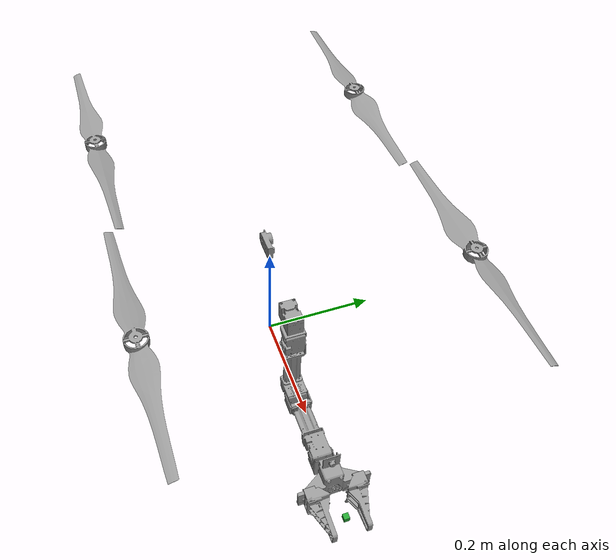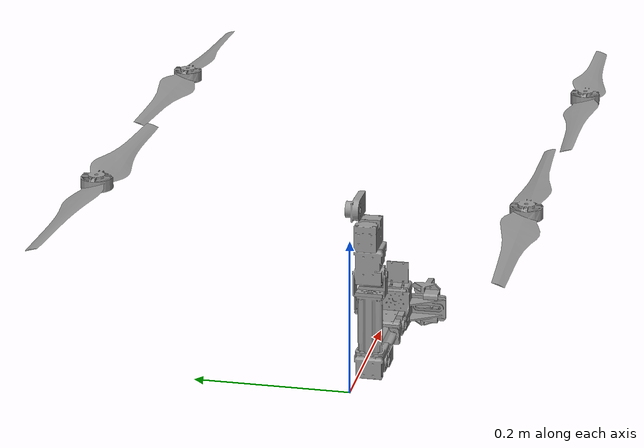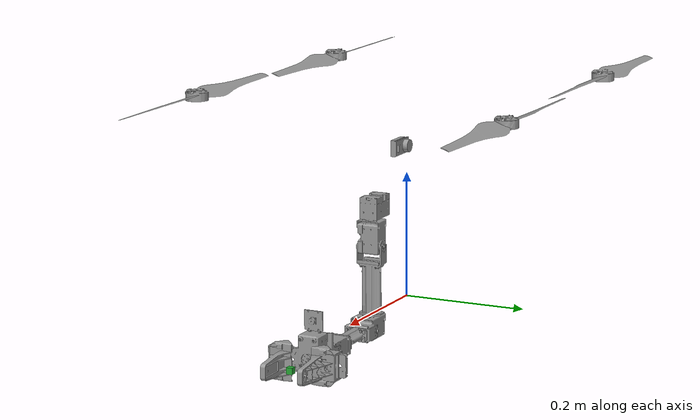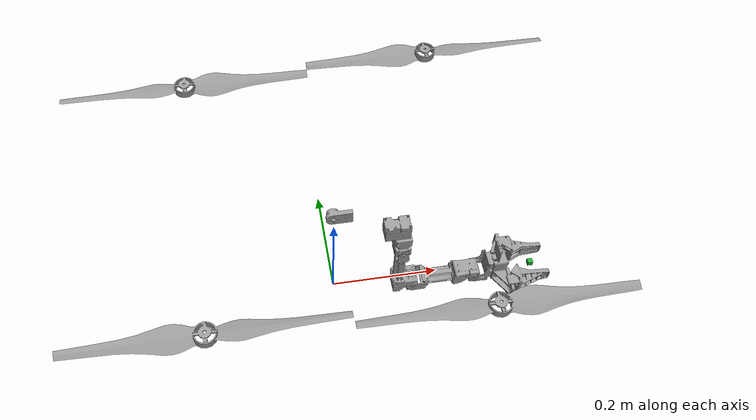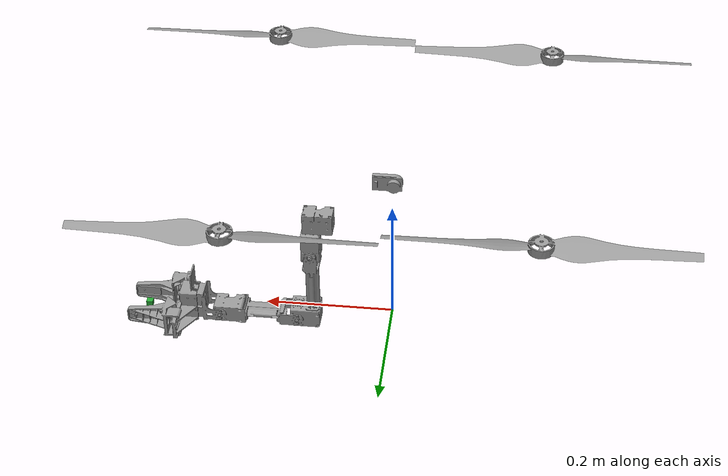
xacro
<?xml version="1.0"?>
<!-- Open_Manipulator Chain -->
<robot name="open_manipulator" xmlns:xacro="http://ros.org/wiki/xacro">

  <!-- Import Rviz colors -->
  <xacro:include filename="$(find open_manipulator_description)/urdf/materials.xacro" />

  <!-- Import all Gazebo-customization elements, including Gazebo colors -->
  <xacro:include filename="$(find open_manipulator_description)/urdf/open_manipulator.gazebo.xacro" />

  <!-- Import Transmission -->
  <xacro:include filename="$(find open_manipulator_description)/urdf/open_manipulator.transmission.xacro" />

  <!-- Import URDF -->
  <xacro:include filename="$(find open_manipulator_description)/urdf/open_manipulator.urdf.xacro" />

  <!-- World -->
  <link name="world"/>

  <!-- World fixed joint-->
  <joint name="world_fixed" type="fixed">
    <origin xyz="0 0 0" rpy="0 0 0"/>
    <parent link="world"/>
    <child link="odom"/>
  </joint>

  <!-- Body -->
  <link name="odom"/>

  <!-- World body joint-->
  <joint name="od" type="fixed">
    <origin xyz="0 0 0" rpy="0 0 0"/>
    <parent link="odom"/>
    <child link="body_FLU"/>
  </joint>

    <!-- Body -->
  <link name="body_FLU"/>

  <!-- World body joint-->
  <joint name="body" type="fixed">
    <origin xyz="0 0 0.240" rpy="0 0 0"/>
    <parent link="body_FLU"/>
    <child link="base_link"/>
  </joint>

</robot>

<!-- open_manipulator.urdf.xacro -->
<!-- Open_Manipulator Chain -->
<robot xmlns:xacro="http://ros.org/wiki/xacro">

  <link
    name="base_link">
    <inertial>
      <origin
        xyz="0.00074502 6.0999E-06 0.0023718"
        rpy="0 0 0" />
      <mass
        value="4.2883" />
      <inertia
        ixx="0.010171"
        ixy="2.9086E-05"
        ixz="-0.0010273"
        iyy="0.016694"
        iyz="3.9761E-05"
        izz="0.015295" />
    </inertial>
    <visual>
      <origin
        xyz="0 0 0"
        rpy="0 0 0" />
      <geometry>
        <mesh
          filename="package://open_manipulator_description/meshes/base_link.STL" />
      </geometry>
      <material
        name="grey"/>
    </visual>
    <collision>
      <origin
        xyz="0 0 0"
        rpy="0 0 0" />
      <geometry>
        <mesh
          filename="package://open_manipulator_description/meshes/base_link.STL" />
      </geometry>
    </collision>
  </link>
  <link
    name="propeller_link1">
    <inertial>
      <origin
        xyz="-1.3853E-09 -1.286E-11 0.0076077"
        rpy="0 0 0" />
      <mass
        value="0.01068" />
      <inertia
        ixx="8.941E-07"
        ixy="-8.1765E-08"
        ixz="2.7924E-14"
        iyy="8.2131E-05"
        iyz="7.4368E-15"
        izz="8.2751E-05" />
    </inertial>
    <visual>
      <origin
        xyz="0 0 0"
        rpy="0 0 0" />
      <geometry>
        <mesh
          filename="package://open_manipulator_description/meshes/propeller_link1.STL" />
      </geometry>
      <material
        name="grey"/>
    </visual>
    <collision>
      <origin
        xyz="0 0 0"
        rpy="0 0 0" />
      <geometry>
        <mesh
          filename="package://open_manipulator_description/meshes/propeller_link1.STL" />
      </geometry>
    </collision>
  </link>
  <joint
    name="propeller_joint1"
    type="continuous">
    <origin
      xyz="0.20575 0.2577 0.089"
      rpy="0 0 0" />
    <parent
      link="base_link" />
    <child
      link="propeller_link1" />
    <axis
      xyz="0 0 1" />
    <limit
      effort="100"
      velocity="100" />
  </joint>
  <link
    name="propeller_link2">
    <inertial>
      <origin
        xyz="0.00910880132669048 -5.32711789675289E-05 0.00759679233335697"
        rpy="0 0 0" />
      <mass
        value="0.0122360049560338" />
      <inertia
        ixx="9.93278673552758E-07"
        ixy="2.69537991117596E-08"
        ixz="3.62570565543768E-07"
        iyy="3.84909547564719E-05"
        iyz="-4.0529018109384E-08"
        izz="3.92080160609976E-05" />
    </inertial>
    <visual>
      <origin
        xyz="0 0 0"
        rpy="0 0 0" />
      <geometry>
        <mesh
          filename="package://open_manipulator_description/meshes/propeller_link2.STL" />
      </geometry>
      <material
        name="grey"/>
    </visual>
    <collision>
      <origin
        xyz="0 0 0"
        rpy="0 0 0" />
      <geometry>
        <mesh
          filename="package://open_manipulator_description/meshes/propeller_link2.STL" />
      </geometry>
    </collision>
  </link>
  <joint
    name="propeller_joint2"
    type="continuous">
    <origin
      xyz="0.20575 -0.2577 0.089"
      rpy="0 0 0" />
    <parent
      link="base_link" />
    <child
      link="propeller_link2" />
    <axis
      xyz="0 0 1" />
    <limit
      effort="100"
      velocity="100" />
  </joint>
  <link
    name="propeller_link3">
    <inertial>
      <origin
        xyz="-1.38529199222859E-09 -1.2860018605565E-11 0.00760765733681423"
        rpy="0 0 0" />
      <mass
        value="0.0106802619311423" />
      <inertia
        ixx="8.94096643340685E-07"
        ixy="-8.17648442204221E-08"
        ixz="2.79240019025484E-14"
        iyy="8.21313960888616E-05"
        iyz="7.43677081936356E-15"
        izz="8.27513886291376E-05" />
    </inertial>
    <visual>
      <origin
        xyz="0 0 0"
        rpy="0 0 0" />
      <geometry>
        <mesh
          filename="package://open_manipulator_description/meshes/propeller_link3.STL" />
      </geometry>
      <material
        name="grey"/>
    </visual>
    <collision>
      <origin
        xyz="0 0 0"
        rpy="0 0 0" />
      <geometry>
        <mesh
          filename="package://open_manipulator_description/meshes/propeller_link3.STL" />
      </geometry>
    </collision>
  </link>
  <joint
    name="propeller_joint3"
    type="continuous">
    <origin
      xyz="-0.22584 -0.23976 0.089"
      rpy="0 0 0" />
    <parent
      link="base_link" />
    <child
      link="propeller_link3" />
    <axis
      xyz="0 0 1" />
    <limit
      effort="100"
      velocity="100" />
  </joint>
  <link
    name="propeller_link4">
    <inertial>
      <origin
        xyz="0.00910880132669595 -5.32499604787851E-05 0.0075967860312664"
        rpy="0 0 0" />
      <mass
        value="0.0122360049560337" />
      <inertia
        ixx="9.93278675305645E-07"
        ixy="2.65513314130224E-08"
        ixz="3.62683363519345E-07"
        iyy="3.84909548123461E-05"
        iyz="-4.05289320878409E-08"
        izz="3.92080160068796E-05" />
    </inertial>
    <visual>
      <origin
        xyz="0 0 0"
        rpy="0 0 0" />
      <geometry>
        <mesh
          filename="package://open_manipulator_description/meshes/propeller_link4.STL" />
      </geometry>
      <material
        name="grey"/>
    </visual>
    <collision>
      <origin
        xyz="0 0 0"
        rpy="0 0 0" />
      <geometry>
        <mesh
          filename="package://open_manipulator_description/meshes/propeller_link4.STL" />
      </geometry>
    </collision>
  </link>
  <joint
    name="propeller_joint4"
    type="continuous">
    <origin
      xyz="-0.22584 0.23976 0.089"
      rpy="0 0 0" />
    <parent
      link="base_link" />
    <child
      link="propeller_link4" />
    <axis
      xyz="0 0 1" />
    <limit
      effort="100"
      velocity="100" />
  </joint>
  <link
    name="link1">
    <inertial>
      <origin
        xyz="0.00028546 5.3895E-16 -0.017935"
        rpy="0 0 0" />
      <mass
        value="0.042691" />
      <inertia
        ixx="6.8032E-06"
        ixy="2.2501E-19"
        ixz="1.0875E-07"
        iyy="1.1936E-05"
        iyz="-2.254E-20"
        izz="1.055E-05" />
    </inertial>
    <visual>
      <origin
        xyz="0 0 0"
        rpy="0 0 0" />
      <geometry>
        <mesh
          filename="package://open_manipulator_description/meshes/link1.STL" />
      </geometry>
      <material
        name="grey"/>
    </visual>
    <collision>
      <origin
        xyz="0 0 0"
        rpy="0 0 0" />
      <geometry>
        <mesh
          filename="package://open_manipulator_description/meshes/link1.STL" />
      </geometry>
    </collision>
  </link>
  <joint
    name="joint0"
    type="fixed">
    <origin
      xyz="0.114 0 -0.054006"
      rpy="0 0 0" />
    <parent
      link="base_link" />
    <child
      link="link1" />
    <axis
      xyz="0 0 0" />
  </joint>
  <link
    name="link2">
    <inertial>
      <origin
        xyz="-8.6881E-11 0.00061101 -0.046806"
        rpy="0 0 0" />
      <mass
        value="0.045068" />
      <inertia
        ixx="1.2486E-05"
        ixy="-5.5947E-14"
        ixz="-4.333E-14"
        iyy="1.0631E-05"
        iyz="-1.9925E-08"
        izz="7.4738E-06" />
    </inertial>
    <visual>
      <origin
        xyz="0 0 0"
        rpy="0 0 0" />
      <geometry>
        <mesh
          filename="package://open_manipulator_description/meshes/link2.STL" />
      </geometry>
      <material
        name="grey"/>
    </visual>
    <collision>
      <origin
        xyz="0 0 0"
        rpy="0 0 0" />
      <geometry>
        <mesh
          filename="package://open_manipulator_description/meshes/link2.STL" />
      </geometry>
    </collision>
  </link>
  <joint
    name="joint1"
    type="revolute">
    <origin
      xyz="0.012 0 -0.017"
      rpy="0 0 0" />
    <parent
      link="link1" />
    <child
      link="link2" />
    <axis
      xyz="0 0 -1" />
    <limit
      lower="-1.5"
      upper="1.5"
      effort="1"
      velocity="4.8" />
  </joint>
  <link
    name="link3">
    <inertial>
      <origin
        xyz="0.0086487 0.00041283 -0.1056"
        rpy="0 0 0" />
      <mass
        value="0.066626" />
      <inertia
        ixx="1.9817E-05"
        ixy="1.9884E-08"
        ixz="1.1649E-10"
        iyy="2.1817E-05"
        iyz="-8.2506E-10"
        izz="1.6434E-05" />
    </inertial>
    <visual>
      <origin
        xyz="0 0 0"
        rpy="0 0 0" />
      <geometry>
        <mesh
          filename="package://open_manipulator_description/meshes/link3.STL" />
      </geometry>
      <material
        name="grey"/>
    </visual>
    <collision>
      <origin
        xyz="0 0 0"
        rpy="0 0 0" />
      <geometry>
        <mesh
          filename="package://open_manipulator_description/meshes/link3.STL" />
      </geometry>
    </collision>
  </link>
  <joint
    name="joint2"
    type="revolute">
    <origin
      xyz="0 0 -0.0595"
      rpy="0 0 0" />
    <parent
      link="link2" />
    <child
      link="link3" />
    <axis
      xyz="0 1 0" />
    <limit
      lower="-1.65"
      upper="1.57"
      effort="1"
      velocity="4.8" />
  </joint>
  <link
    name="link4">
    <inertial>
      <origin
        xyz="0.094148 0.00045083 -8.8171E-07"
        rpy="0 0 0" />
      <mass
        value="0.061077" />
      <inertia
        ixx="1.0216E-05"
        ixy="1.9877E-08"
        ixz="2.6581E-11"
        iyy="1.5131E-05"
        iyz="-4.7919E-11"
        izz="1.8336E-05" />
    </inertial>
    <visual>
      <origin
        xyz="0 0 0"
        rpy="0 0 0" />
      <geometry>
        <mesh
          filename="package://open_manipulator_description/meshes/link4.STL" />
      </geometry>
      <material
        name="grey"/>
    </visual>
    <collision>
      <origin
        xyz="0 0 0"
        rpy="0 0 0" />
      <geometry>
        <mesh
          filename="package://open_manipulator_description/meshes/link4.STL" />
      </geometry>
    </collision>
  </link>
  <joint
    name="joint3"
    type="revolute">
    <origin
      xyz="0.024 0 -0.128"
      rpy="0 0 0" />
    <parent
      link="link3" />
    <child
      link="link4" />
    <axis
      xyz="0 1 0" />
    <limit
      lower="-1.5"
      upper="1.5"
      effort="1"
      velocity="4.8" />
  </joint>
  <link
    name="link5">
    <inertial>
      <origin
        xyz="0.049623 -2.9307E-08 0.0083646"
        rpy="0 0 0" />
      <mass
        value="0.080366" />
      <inertia
        ixx="3.0765E-05"
        ixy="-4.1606E-09"
        ixz="6.3268E-07"
        iyy="2.4283E-05"
        iyz="6.782E-08"
        izz="2.0111E-05" />
    </inertial>
    <visual>
      <origin
        xyz="0 0 0"
        rpy="0 0 0" />
      <geometry>
        <mesh
          filename="package://open_manipulator_description/meshes/link5.STL" />
      </geometry>
      <material
        name="grey"/>
    </visual>
    <collision>
      <origin
        xyz="0 0 0"
        rpy="0 0 0" />
      <geometry>
        <mesh
          filename="package://open_manipulator_description/meshes/link5.STL" />
      </geometry>
    </collision>
  </link>
  <joint
    name="joint4"
    type="revolute">
    <origin
      xyz="0.124 0 0"
      rpy="0 0 0" />
    <parent
      link="link4" />
    <child
      link="link5" />
    <axis
      xyz="0 1 0" />
    <limit
      lower="-1.7"
      upper="2.042"
      effort="1"
      velocity="4.8" />
  </joint>
  <link
    name="gripper_link">
    <inertial>
      <origin
        xyz="0.0076219 0.0047109 -7.1673E-07"
        rpy="0 0 0" />
      <mass
        value="0.024997" />
      <inertia
        ixx="7.0228E-06"
        ixy="2.0587E-07"
        ixz="-4.6329E-10"
        iyy="1.2476E-05"
        iyz="-2.2699E-10"
        izz="7.7793E-06" />
    </inertial>
    <visual>
      <origin
        xyz="0 0 0"
        rpy="0 0 0" />
      <geometry>
        <mesh
          filename="package://open_manipulator_description/meshes/gripper_link.STL" />
      </geometry>
      <material
        name="grey"/>
    </visual>
    <collision>
      <origin
        xyz="0 0 0"
        rpy="0 0 0" />
      <geometry>
        <mesh
          filename="package://open_manipulator_description/meshes/gripper_link.STL" />
      </geometry>
    </collision>
  </link>
  <joint
    name="gripper"
    type="prismatic">
    <origin
      xyz="0.0816 0.030798 -0.00035"
      rpy="0 0 0" />
    <parent
      link="link5" />
    <child
      link="gripper_link" />
    <axis
      xyz="0 1 0" />
    <limit
      lower="-0.01"
      upper="0.019"
      effort="0"
      velocity="0" />
  </joint>
  <link
    name="gripper_link_sub">
    <inertial>
      <origin
        xyz="0.0076219 -0.0047109 7.1673E-07"
        rpy="0 0 0" />
      <mass
        value="0.024997" />
      <inertia
        ixx="7.0228E-06"
        ixy="-2.0587E-07"
        ixz="4.6329E-10"
        iyy="1.2476E-05"
        iyz="-2.2699E-10"
        izz="7.7793E-06" />
    </inertial>
    <visual>
      <origin
        xyz="0 0 0"
        rpy="0 0 0" />
      <geometry>
        <mesh
          filename="package://open_manipulator_description/meshes/gripper_link_sub.STL" />
      </geometry>
      <material
        name="grey"/>
    </visual>
    <collision>
      <origin
        xyz="0 0 0"
        rpy="0 0 0" />
      <geometry>
        <mesh
          filename="package://open_manipulator_description/meshes/gripper_link_sub.STL" />
      </geometry>
    </collision>
  </link>
  <joint
    name="gripper_sub"
    type="prismatic">
    <origin
      xyz="0.0816 -0.030798 -0.00035"
      rpy="0 0 0" />
    <parent
      link="link5" />
    <child
      link="gripper_link_sub" />
    <axis
      xyz="0 -1 0" />
    <limit
      lower="-0.01"
      upper="0.019"
      effort="1"
      velocity="4.8" />
    <mimic
      joint="gripper"
      multiplier="1"
      offset="0" />
  </joint>
  <link
    name="end_effector_link">
    <inertial>
      <origin
        xyz="0 0 0"
        rpy="0 0 0" />
      <mass
        value="0.001" />
      <inertia
        ixx="1.6667E-08"
        ixy="-2.1684E-25"
        ixz="-8.4057E-25"
        iyy="1.6667E-08"
        iyz="0"
        izz="1.6667E-08" />
    </inertial>
    <visual>
      <origin
        xyz="0 0 0"
        rpy="0 0 0" />
      <geometry>
        <mesh
          filename="package://open_manipulator_description/meshes/end_effector_link.STL" />
      </geometry>
      <material
        name="green"/>
    </visual>
    <collision>
      <origin
        xyz="0 0 0"
        rpy="0 0 0" />
      <geometry>
        <mesh
          filename="package://open_manipulator_description/meshes/end_effector_link.STL" />
      </geometry>
    </collision>
  </link>
  <joint
    name="end_effector_joint"
    type="fixed">
    <origin
      xyz="0.11758 4.4858E-05 -8.8638E-05"
      rpy="0 0 0" />
    <parent
      link="link5" />
    <child
      link="end_effector_link" />
    <axis
      xyz="0 0 0" />
  </joint>
  <link
    name="cam_link">
    <inertial>
      <origin
        xyz="0.00093101 -7.6907E-18 -0.00059615"
        rpy="0 0 0" />
      <mass
        value="0.0024355" />
      <inertia
        ixx="2.9768E-07"
        ixy="-4.821E-22"
        ixz="-5.6631E-09"
        iyy="1.6811E-07"
        iyz="3.509E-23"
        izz="1.5494E-07" />
    </inertial>
    <visual>
      <origin
        xyz="0 0 0"
        rpy="0 0 0" />
      <geometry>
        <mesh
          filename="package://open_manipulator_description/meshes/cam_link.STL" />
      </geometry>
      <material
        name="grey"/>
    </visual>
    <collision>
      <origin
        xyz="0 0 0"
        rpy="0 0 0" />
      <geometry>
        <mesh
          filename="package://open_manipulator_description/meshes/cam_link.STL" />
      </geometry>
    </collision>
  </link>
  <joint
    name="cam_joint"
    type="fixed">
    <origin
      xyz="0.0445 0 0.0568"
      rpy="0 0 0" />
    <parent
      link="link5" />
    <child
      link="cam_link" />
    <axis
      xyz="0 0 0" />
  </joint>
</robot>
